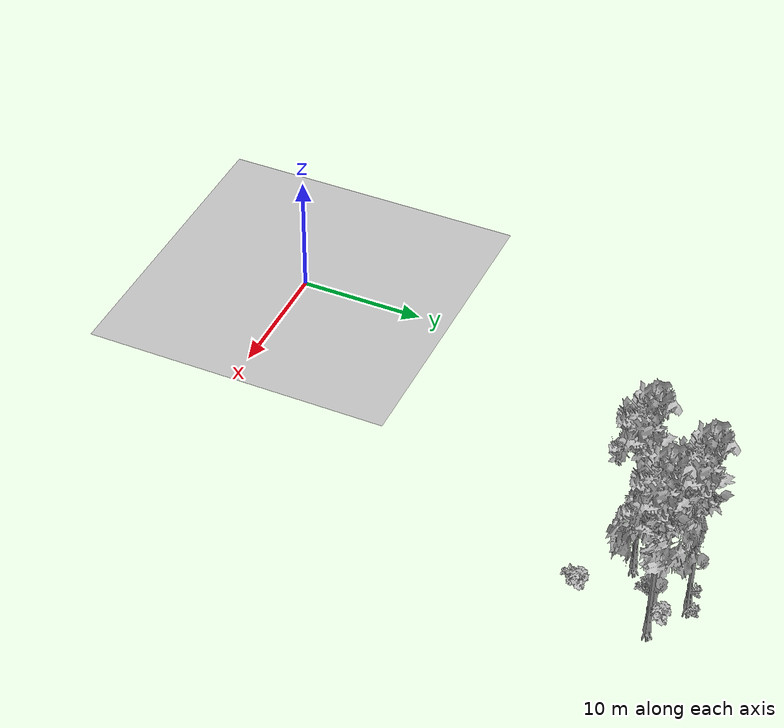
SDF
<sdf version="1.7">
 <world name="default">
  <model name="ground_plane">
   <static>1</static>
   <link name="link">
    <collision name="collision">
     <pose>-50 0 0 0 -0 0</pose>
     <geometry><plane><normal>0 0 1</normal><size>80 80</size></plane></geometry>
     <surface><contact><ode><min_depth>0.01</min_depth><max_vel>0</max_vel></ode></contact></surface>
    </collision>
    <visual name="grass">
     <cast_shadows>0</cast_shadows>
     <geometry>
      <mesh>
       <scale>0.46714285714285714 0.46714285714285714 0.1</scale>
       <uri>file://grass_plane/meshes/grass_plane.dae</uri>
      </mesh>
     </geometry>
    </visual>
   </link>
  </model>
  <model name="Tree 46">
   <static>1</static>
   <pose>20.424326134365266 39.52450784054459 0 1.57079 -0 0</pose>
   <link name="link">
    <collision name="collision">
     <geometry><mesh><scale>3.5 5 3.5</scale><uri>model://tree_9/meshes/tree_9.obj</uri></mesh></geometry>
    </collision>
    <visual name="visual">
     <geometry><mesh><scale>3.5 5 3.5</scale><uri>model://tree_9/meshes/tree_9.obj</uri></mesh></geometry>
    </visual>
   </link>
  </model>
  <model name="Tree 175">
   <static>1</static>
   <pose>21.413666174241776 37.360338359060435 0 1.57079 -0 0</pose>
   <link name="link">
    <collision name="collision">
     <geometry><mesh><scale>3.5 5 3.5</scale><uri>model://tree_2/meshes/tree_2.obj</uri></mesh></geometry>
    </collision>
    <visual name="visual">
     <geometry><mesh><scale>3.5 5 3.5</scale><uri>model://tree_2/meshes/tree_2.obj</uri></mesh></geometry>
    </visual>
   </link>
  </model>
  <model name="Tree 211">
   <static>1</static>
   <pose>23.633802362626902 37.71456939921882 0 1.57079 -0 0</pose>
   <link name="link">
    <collision name="collision">
     <geometry><mesh><scale>3.5 5 3.5</scale><uri>model://tree_9/meshes/tree_9.obj</uri></mesh></geometry>
    </collision>
    <visual name="visual">
     <geometry><mesh><scale>3.5 5 3.5</scale><uri>model://tree_9/meshes/tree_9.obj</uri></mesh></geometry>
    </visual>
   </link>
  </model>
  <model name="Tree 281">
   <static>1</static>
   <pose>18.38994176913379 34.80481533241216 0 1.57079 -0 0</pose>
   <link name="link">
    <collision name="collision">
     <geometry><mesh><scale>3.5 5 3.5</scale><uri>model://tree_9/meshes/tree_9.obj</uri></mesh></geometry>
    </collision>
    <visual name="visual">
     <geometry><mesh><scale>3.5 5 3.5</scale><uri>model://tree_9/meshes/tree_9.obj</uri></mesh></geometry>
    </visual>
   </link>
  </model>
  <model name="Bush 48">
   <static>1</static>
   <pose>20.49388835621228 39.92341494181757 0 1.57079 -0 0</pose>
   <link name="link">
    <collision name="collision">
     <geometry><mesh><scale>2 2 2</scale><uri>model://bush_2/meshes/bush_2.obj</uri></mesh></geometry>
     <surface><contact><collide_without_contact>false</collide_without_contact></contact></surface>
    </collision>
    <visual name="visual">
     <geometry><mesh><scale>2 2 2</scale><uri>model://bush_2/meshes/bush_2.obj</uri></mesh></geometry>
    </visual>
   </link>
  </model>
  <model name="Bush 171">
   <static>1</static>
   <pose>20.095622401623714 36.38284504074883 0 1.57079 -0 0</pose>
   <link name="link">
    <collision name="collision">
     <geometry><mesh><scale>2 2 2</scale><uri>model://bush_4/meshes/bush_4.obj</uri></mesh></geometry>
     <surface><contact><collide_without_contact>false</collide_without_contact></contact></surface>
    </collision>
    <visual name="visual">
     <geometry><mesh><scale>2 2 2</scale><uri>model://bush_4/meshes/bush_4.obj</uri></mesh></geometry>
    </visual>
   </link>
  </model>
  <model name="Bush 283">
   <static>1</static>
   <pose>21.789271555581998 31.667402937448003 0 1.57079 -0 0</pose>
   <link name="link">
    <collision name="collision">
     <geometry><mesh><scale>2 2 2</scale><uri>model://bush_1/meshes/bush_1.obj</uri></mesh></geometry>
     <surface><contact><collide_without_contact>false</collide_without_contact></contact></surface>
    </collision>
    <visual name="visual">
     <geometry><mesh><scale>2 2 2</scale><uri>model://bush_1/meshes/bush_1.obj</uri></mesh></geometry>
    </visual>
   </link>
  </model>
  <model name="Bush 370">
   <static>1</static>
   <pose>18.688329749645035 39.43354432878323 0 1.57079 -0 0</pose>
   <link name="link">
    <collision name="collision">
     <geometry><mesh><scale>2 2 2</scale><uri>model://bush_2/meshes/bush_2.obj</uri></mesh></geometry>
     <surface><contact><collide_without_contact>false</collide_without_contact></contact></surface>
    </collision>
    <visual name="visual">
     <geometry><mesh><scale>2 2 2</scale><uri>model://bush_2/meshes/bush_2.obj</uri></mesh></geometry>
    </visual>
   </link>
  </model>
  <model name="Bush 415">
   <static>1</static>
   <pose>19.798358984654655 36.001313965469905 0 1.57079 -0 0</pose>
   <link name="link">
    <collision name="collision">
     <geometry><mesh><scale>2 2 2</scale><uri>model://bush_2/meshes/bush_2.obj</uri></mesh></geometry>
     <surface><contact><collide_without_contact>false</collide_without_contact></contact></surface>
    </collision>
    <visual name="visual">
     <geometry><mesh><scale>2 2 2</scale><uri>model://bush_2/meshes/bush_2.obj</uri></mesh></geometry>
    </visual>
   </link>
  </model>
  <model name="Bush 520">
   <static>1</static>
   <pose>22.47839228326429 37.986161410685014 0 1.57079 -0 0</pose>
   <link name="link">
    <collision name="collision">
     <geometry><mesh><scale>2 2 2</scale><uri>model://bush_1/meshes/bush_1.obj</uri></mesh></geometry>
     <surface><contact><collide_without_contact>false</collide_without_contact></contact></surface>
    </collision>
    <visual name="visual">
     <geometry><mesh><scale>2 2 2</scale><uri>model://bush_1/meshes/bush_1.obj</uri></mesh></geometry>
    </visual>
   </link>
  </model>
  <model name="Bush 521">
   <static>1</static>
   <pose>20.657607134626666 30.796409346405696 0 1.57079 -0 0</pose>
   <link name="link">
    <collision name="collision">
     <geometry><mesh><scale>2 2 2</scale><uri>model://bush_2/meshes/bush_2.obj</uri></mesh></geometry>
     <surface><contact><collide_without_contact>false</collide_without_contact></contact></surface>
    </collision>
    <visual name="visual">
     <geometry><mesh><scale>2 2 2</scale><uri>model://bush_2/meshes/bush_2.obj</uri></mesh></geometry>
    </visual>
   </link>
  </model>
 </world>
</sdf>
